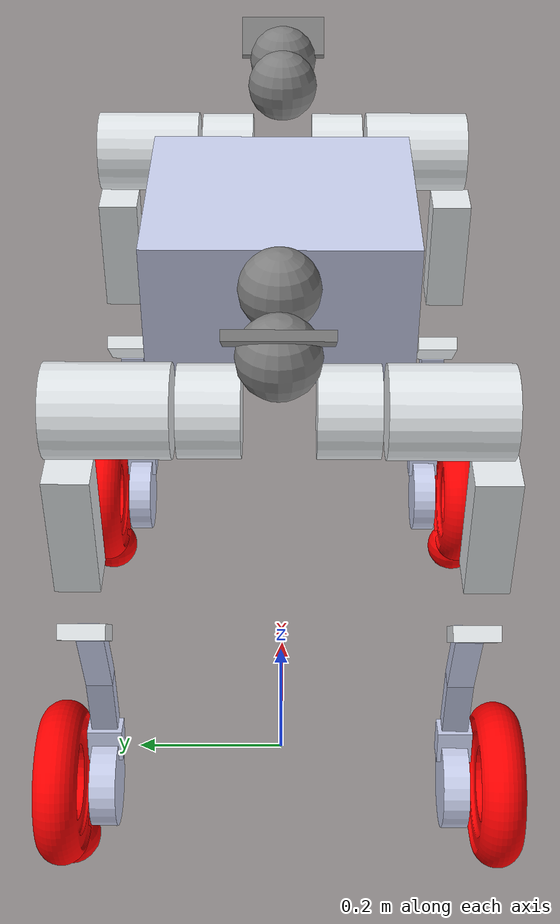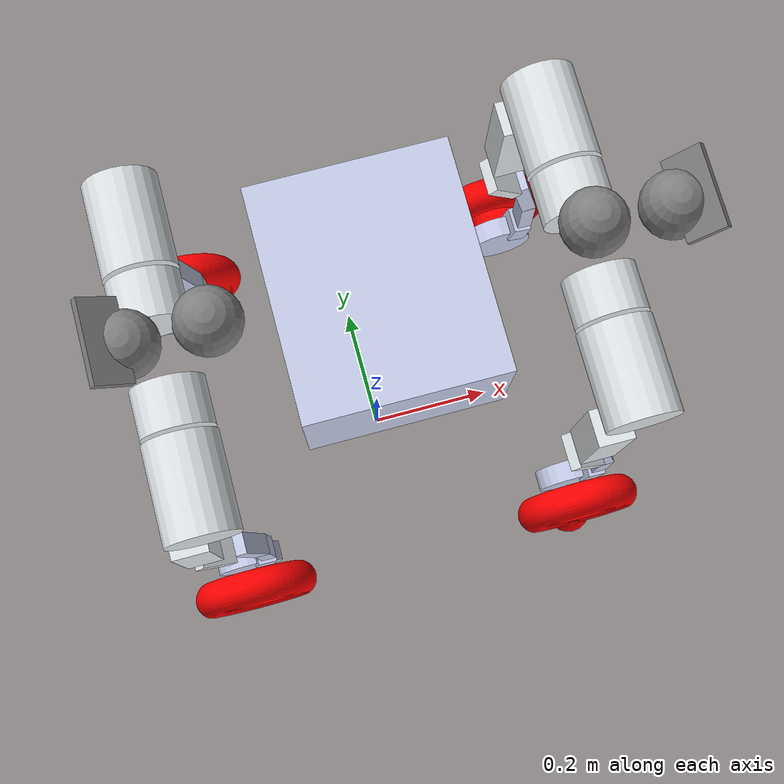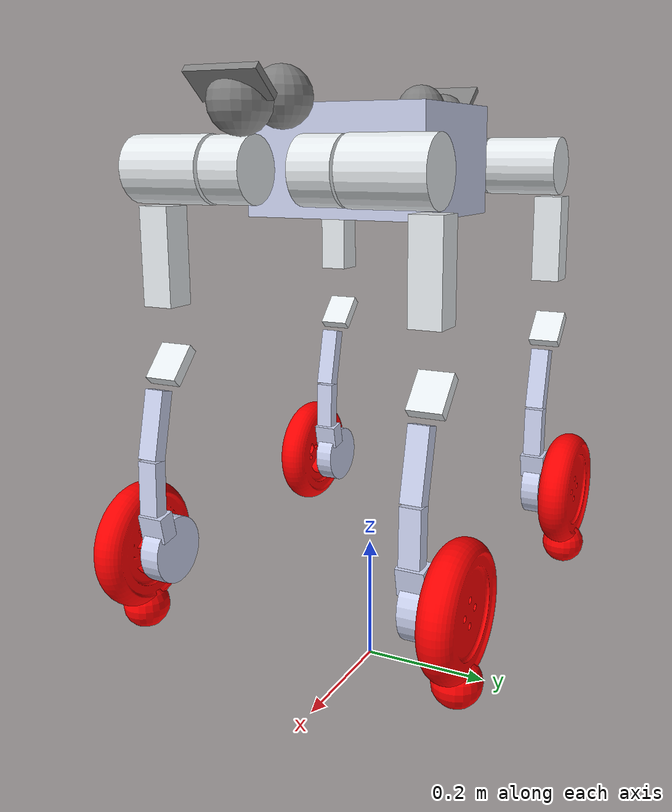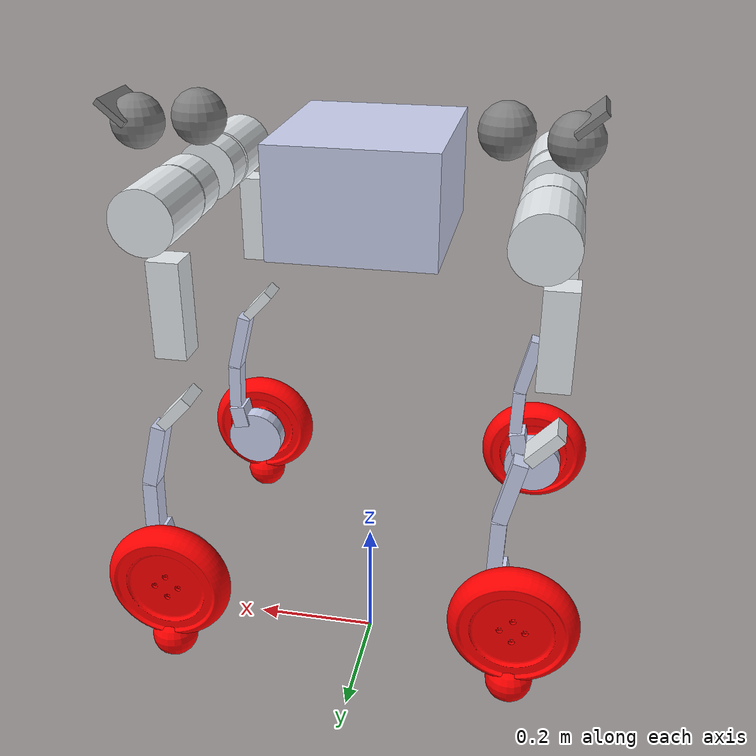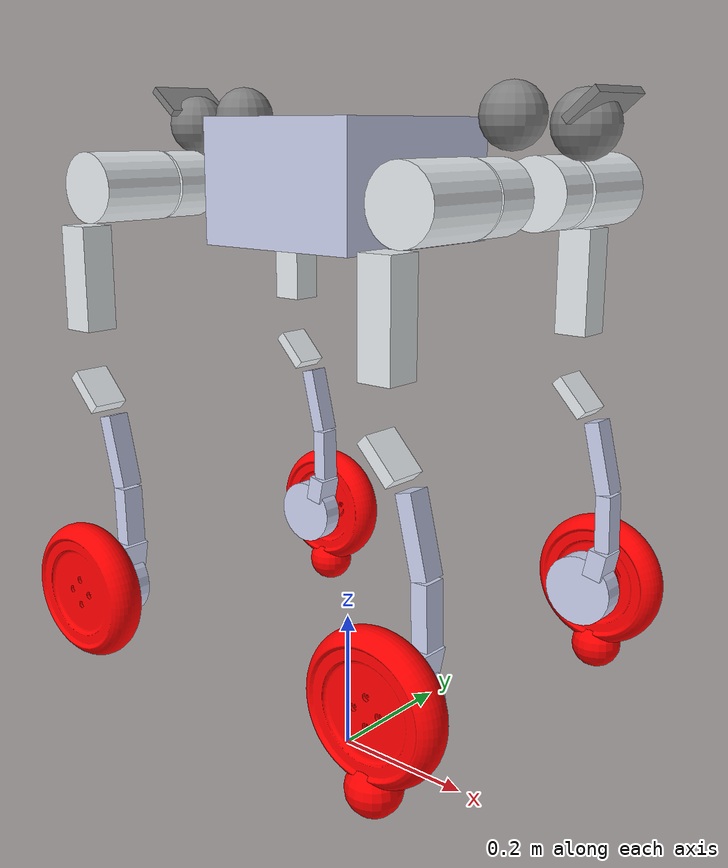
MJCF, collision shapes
<mujoco model="X2-0807urdf">
  <compiler angle="radian" meshdir="meshes/"/>

  <asset>
    <mesh name="base_link" file="base_link.STL"/>
    <mesh name="left_front_Link1" file="left_front_Link1.STL"/>
    <mesh name="left_front_Link2" file="left_front_Link2.STL"/>
    <mesh name="left_front_Link3" file="left_front_Link3.STL"/>
    <mesh name="left_front_Link4" file="left_front_Link4.STL"/>
    <mesh name="left_hind_Link1" file="left_hind_Link1.STL"/>
    <mesh name="left_hind_Link2" file="left_hind_Link2.STL"/>
    <mesh name="left_hind_Link3" file="left_hind_Link3.STL"/>
    <mesh name="left_hind_Link4" file="left_hind_Link4.STL"/>
    <mesh name="right_front_Link1" file="right_front_Link1.STL"/>
    <mesh name="right_front_Link2" file="right_front_Link2.STL"/>
    <mesh name="right_front_Link3" file="right_front_Link3.STL"/>
    <mesh name="right_front_Link4" file="right_front_Link4.STL"/>
    <mesh name="right_hind_Link1" file="right_hind_Link1.STL"/>
    <mesh name="right_hind_Link2" file="right_hind_Link2.STL"/>
    <mesh name="right_hind_Link3" file="right_hind_Link3.STL"/>
    <mesh name="right_hind_Link4" file="right_hind_Link4.STL"/>
  </asset>

  <worldbody>
    <body name="base_link" pos="0 0 0.8">
      <inertial pos="0.00697549 -0.000712133 0.0128764" quat="-0.00152806 0.699581 -0.00252911 0.714547" mass="19.671" diaginertia="0.474399 0.409727 0.14363"/>
      <joint name="floating_base_joint" type="free"/>
      <geom type="mesh" contype="0" conaffinity="0" group="1" density="0" rgba="0.792157 0.819608 0.933333 1" mesh="base_link"/>
      <geom size="0.12 0.14 0.08" pos="0 0 0.01" type="box" rgba="0.792157 0.819608 0.933333 1"/>
      <geom size="0.025 0.05 0.005" pos="0.365 0 0.1" quat="0.939373 0 -0.342898 0" type="box"/>
      <geom size="0.04" pos="0.345 0 0.08"/>
      <geom size="0.04" pos="0.25 0 0.09"/>
      <geom size="0.025 0.05 0.005" pos="-0.302 0 0.112" quat="0.939373 0 0.342898 0" type="box"/>
      <geom size="0.04" pos="-0.285 0 0.08"/>
      <geom size="0.04" pos="-0.19 0 0.09"/>
      <body name="hips_sphere" pos="-0.25944 0.0 0">
        <geom type="sphere" size="0.035" contype="0" conaffinity="0" group="1" density="0" rgba="0.6 0.6 0.6 0.0"/>
      </body>
      <body name="neck_sphere" pos="0.25944 0.0 0">
        <geom type="sphere" size="0.035" contype="0" conaffinity="0" group="1" density="0" rgba="0.6 0.6 0.6 0.0"/>
      </body>
      <body name="head_sphere" pos="0.3 0.0 0">
        <geom type="sphere" size="0.035" contype="0" conaffinity="0" group="1" density="0" rgba="0.6 0.6 0.6 0.0"/>
      </body>
      <body name="FL_hip" pos="0.25944 0.075113 0">
        <inertial pos="-0.002408 -0.01622 0.000239" quat="0.66751 0.421649 0.565191 0.239168" mass="1.62" diaginertia="0.0016644 0.00161602 0.00145995"/>
        <joint name="FL_hip_joint" pos="0 0 0" axis="1 0 0" range="-1.01 1.01" actuatorfrcrange="-120 120"/>
        <geom type="mesh" contype="0" conaffinity="0" group="1" density="0" rgba="0.898039 0.917647 0.929412 1" mesh="left_front_Link1"/>
        <geom size="0.046 0.06" pos="0 0.085 0" quat="0.707035 0.707179 0 0" type="cylinder" rgba="0.898039 0.917647 0.929412 1"/>
        <geom size="0.045 0.03" pos="0 -0.01 0" quat="0.707035 0.707179 0 0" type="cylinder" rgba="0.898039 0.917647 0.929412 1"/>
        <body name="FL_thigh" pos="0 0.12779 0">
          <inertial pos="-0.003268 -0.03111 -0.053896" quat="0.993045 0.11348 0.0231928 0.0211279" mass="3.079" diaginertia="0.0293395 0.0280448 0.00383794"/>
          <joint name="FL_thigh_joint" pos="0 0 0" axis="0 1 0" range="-2.34 3.15" actuatorfrcrange="-120 120"/>
          <geom type="mesh" contype="0" conaffinity="0" group="1" density="0" rgba="0.898039 0.917647 0.929412 1" mesh="left_front_Link2"/>
          <geom size="0.023 0.023 0.07" pos="-0.025 -0.003 -0.12" type="box" rgba="0.898039 0.917647 0.929412 1"/>
          <geom size="0.0085 0.025 0.03" pos="-0.022 0 -0.275" quat="0.930508 0 -0.366273 0" type="box" rgba="0.898039 0.917647 0.929412 1"/>
          <body name="FL_calf" pos="0 0 -0.275">
            <inertial pos="0.004018 0.017411 -0.232283" quat="0.775901 0.051812 -0.0143577 0.628559" mass="1.751" diaginertia="0.0147479 0.0144066 0.00134515"/>
            <joint name="FL_calf_joint" pos="0 0 0" axis="0 1 0" range="-2.77 -0.54" actuatorfrcrange="-180 180"/>
            <geom type="mesh" contype="0" conaffinity="0" group="1" density="0" rgba="0.792157 0.819608 0.933333 1" mesh="left_front_Link3"/>
            <geom size="0.05 0.015" pos="0 0 -0.275" quat="0.707035 0.707179 0 0" type="cylinder" rgba="0.792157 0.819608 0.933333 1"/>
            <geom size="0.011 0.015 0.05" pos="0.02 0 -0.08" quat="0.992809 0 -0.119712 0" type="box" rgba="0.792157 0.819608 0.933333 1"/>
            <geom size="0.011 0.015 0.04" pos="0.033 0 -0.17" quat="0.999888 0 -0.0149994 0" type="box" rgba="0.792157 0.819608 0.933333 1"/>
            <geom size="0.014 0.02 0.02" pos="0.027 0 -0.23" quat="0.995004 0 0.0998334 0" type="box" rgba="0.792157 0.819608 0.933333 1"/>
            <body name="FL_wheel" pos="0 0 -0.275">
              <inertial pos="0 0.05108 0" quat="0.707107 0 0 0.707107" mass="0.982" diaginertia="0.00458159 0.00243576 0.00243576"/>
              <joint name="FL_wheel_joint" pos="0 0 0" axis="0 1 0" range="-inf inf" actuatorfrcrange="-24.5 24.5"/>
              <geom type="mesh" contype="0" conaffinity="0" group="1" density="0" rgba="0.792157 0.819608 0.933333 1" mesh="left_front_Link4"/>
              <geom size="0.035" pos="0.0 0.05 -0.1" contype="0" conaffinity="0" group="1" density="0" rgba="1 0 0 1"/>
              <geom type="mesh" rgba="1 0 0 1" mesh="left_front_Link4"/>
              <body name="left_hand" pos="0.0 0.05 -0.1">
                <geom type="sphere" size="0.035" contype="0" conaffinity="0" group="1" density="0" rgba="0.6 0.6 0.6 0.0"/>
              </body>
            </body>
          </body>
        </body>
      </body>
      <body name="RL_hip" pos="-0.25944 0.075113 0">
        <inertial pos="0.00327 -0.01622 -9.7e-05" quat="0.358494 0.383537 0.580824 0.622113" mass="1.62" diaginertia="0.00167848 0.00163116 0.00141504"/>
        <joint name="RL_hip_joint" pos="0 0 0" axis="1 0 0" range="-1.01 1.01" actuatorfrcrange="-120 120"/>
        <geom type="mesh" contype="0" conaffinity="0" group="1" density="0" rgba="0.898039 0.917647 0.929412 1" mesh="left_hind_Link1"/>
        <geom size="0.046 0.06" pos="0 0.085 0" quat="0.707035 0.707179 0 0" type="cylinder" rgba="0.898039 0.917647 0.929412 1"/>
        <geom size="0.045 0.03" pos="0 -0.01 0" quat="0.707035 0.707179 0 0" type="cylinder" rgba="0.898039 0.917647 0.929412 1"/>
        <body name="RL_thigh" pos="0 0.12779 0">
          <inertial pos="-0.003268 -0.03111 -0.053896" quat="0.993045 0.11348 0.0231928 0.0211279" mass="3.079" diaginertia="0.0293395 0.0280448 0.00383794"/>
          <joint name="RL_thigh_joint" pos="0 0 0" axis="0 1 0" range="-1.56 3.94" actuatorfrcrange="-120 120"/>
          <geom type="mesh" contype="0" conaffinity="0" group="1" density="0" rgba="0.898039 0.917647 0.929412 1" mesh="left_hind_Link2"/>
          <geom size="0.023 0.023 0.07" pos="-0.025 -0.003 -0.12" type="box" rgba="0.898039 0.917647 0.929412 1"/>
          <geom size="0.0085 0.025 0.03" pos="-0.022 0 -0.275" quat="0.930508 0 -0.366273 0" type="box" rgba="0.898039 0.917647 0.929412 1"/>
          <body name="RL_calf" pos="0 0 -0.275">
            <inertial pos="0.004018 0.017411 -0.232283" quat="0.775901 0.051812 -0.0143577 0.628559" mass="1.751" diaginertia="0.0147479 0.0144066 0.00134515"/>
            <joint name="RL_calf_joint" pos="0 0 0" axis="0 1 0" range="-2.77 -0.54" actuatorfrcrange="-180 180"/>
            <geom type="mesh" contype="0" conaffinity="0" group="1" density="0" rgba="0.792157 0.819608 0.933333 1" mesh="left_hind_Link3"/>
            <geom size="0.05 0.015" pos="0 0 -0.275" quat="0.707035 0.707179 0 0" type="cylinder" rgba="0.792157 0.819608 0.933333 1"/>
            <geom size="0.011 0.015 0.05" pos="0.02 0 -0.08" quat="0.992809 0 -0.119712 0" type="box" rgba="0.792157 0.819608 0.933333 1"/>
            <geom size="0.011 0.015 0.04" pos="0.033 0 -0.17" quat="0.999888 0 -0.0149994 0" type="box" rgba="0.792157 0.819608 0.933333 1"/>
            <geom size="0.014 0.02 0.02" pos="0.027 0 -0.23" quat="0.995004 0 0.0998334 0" type="box" rgba="0.792157 0.819608 0.933333 1"/>
            <body name="RL_wheel" pos="0 0 -0.275">
              <inertial pos="0 0.05108 0" quat="0.707107 0 0 0.707107" mass="0.982" diaginertia="0.00458159 0.00243576 0.00243576"/>
              <joint name="RL_wheel_joint" pos="0 0 0" axis="0 1 0" range="-inf inf" actuatorfrcrange="-24.5 24.5"/>
              <geom type="mesh" contype="0" conaffinity="0" group="1" density="0" rgba="0.792157 0.819608 0.933333 1" mesh="left_hind_Link4"/>
              <geom size="0.035" pos="0.0 0.05 -0.1" contype="0" conaffinity="0" group="1" density="0" rgba="1 0 0 1"/>
              <geom type="mesh" rgba="1 0 0 1" mesh="left_hind_Link4"/>
              <body name="left_foot" pos="0.0 0.05 -0.1">
                <geom type="sphere" size="0.035" contype="0" conaffinity="0" group="1" density="0" rgba="0.6 0.6 0.6 1"/>
                <body name="left_foot_end_link" pos="0.0 0 0.0">
                  <geom type="sphere" size="0.01" contype="0" conaffinity="0" group="1" density="0" rgba="1 0 0 0"/>
                </body>
                <body name="left_toe_link" pos="0.0 0 0.0">
                  <geom type="sphere" size="0.01" contype="0" conaffinity="0" group="1" density="0" rgba="1 0 0 0"/>
                </body>
              </body>
            </body>
          </body>
        </body>
      </body>
      <body name="FR_hip" pos="0.25944 -0.075113 0">
        <inertial pos="-0.002465 0.01622 0.000318" quat="0.244263 0.553086 0.449878 0.657299" mass="1.62" diaginertia="0.0016672 0.00160755 0.00146457"/>
        <joint name="FR_hip_joint" pos="0 0 0" axis="1 0 0" range="-1.01 1.01" actuatorfrcrange="-120 120"/>
        <geom type="mesh" contype="0" conaffinity="0" group="1" density="0" rgba="0.898039 0.917647 0.929412 1" mesh="right_front_Link1"/>
        <geom size="0.046 0.06" pos="0 -0.085 0" quat="0.707035 0.707179 0 0" type="cylinder" rgba="0.898039 0.917647 0.929412 1"/>
        <geom size="0.045 0.03" pos="0 0.01 0" quat="0.707035 0.707179 0 0" type="cylinder" rgba="0.898039 0.917647 0.929412 1"/>
        <body name="FR_thigh" pos="0 -0.12779 0">
          <inertial pos="-0.003256 0.031125 -0.053921" quat="0.993054 -0.113587 0.0234158 -0.0198545" mass="3.077" diaginertia="0.029323 0.028038 0.00383842"/>
          <joint name="FR_thigh_joint" pos="0 0 0" axis="0 1 0" range="-2.34 3.15" actuatorfrcrange="-120 120"/>
          <geom type="mesh" contype="0" conaffinity="0" group="1" density="0" rgba="0.898039 0.917647 0.929412 1" mesh="right_front_Link2"/>
          <geom size="0.023 0.023 0.07" pos="-0.025 -0.003 -0.12" type="box" rgba="0.898039 0.917647 0.929412 1"/>
          <geom size="0.0085 0.025 0.03" pos="-0.022 0 -0.275" quat="0.930508 0 -0.366273 0" type="box" rgba="0.898039 0.917647 0.929412 1"/>
          <body name="FR_calf" pos="0 0 -0.275">
            <inertial pos="0.003855 -0.017411 -0.232224" quat="0.637245 -0.0146461 0.0520319 0.768763" mass="1.75" diaginertia="0.0147385 0.0144011 0.0013464"/>
            <joint name="FR_calf_joint" pos="0 0 0" axis="0 1 0" range="-2.77 -0.54" actuatorfrcrange="-180 180"/>
            <geom type="mesh" contype="0" conaffinity="0" group="1" density="0" rgba="0.792157 0.819608 0.933333 1" mesh="right_front_Link3"/>
            <geom size="0.05 0.015" pos="0 0 -0.275" quat="0.707035 0.707179 0 0" type="cylinder" rgba="0.792157 0.819608 0.933333 1"/>
            <geom size="0.011 0.015 0.05" pos="0.02 0 -0.08" quat="0.992809 0 -0.119712 0" type="box" rgba="0.792157 0.819608 0.933333 1"/>
            <geom size="0.011 0.015 0.04" pos="0.033 0 -0.17" quat="0.999888 0 -0.0149994 0" type="box" rgba="0.792157 0.819608 0.933333 1"/>
            <geom size="0.014 0.02 0.02" pos="0.027 0 -0.23" quat="0.995004 0 0.0998334 0" type="box" rgba="0.792157 0.819608 0.933333 1"/>
            <body name="FR_wheel" pos="0 0 -0.275">
              <inertial pos="0 -0.05108 0" quat="0.707107 0 0 0.707107" mass="0.982" diaginertia="0.00458159 0.00243576 0.00243576"/>
              <joint name="FR_wheel_joint" pos="0 0 0" axis="0 1 0" range="-inf inf" actuatorfrcrange="-24.5 24.5"/>
              <geom type="mesh" contype="0" conaffinity="0" group="1" density="0" rgba="0.792157 0.819608 0.933333 1" mesh="right_front_Link4"/>
              <geom size="0.035" pos="0.0 -0.05 -0.1" contype="0" conaffinity="0" group="1" density="0" rgba="1 0 0 1"/>
              <geom type="mesh" rgba="1 0 0 1" mesh="right_front_Link4"/>
              <body name="right_hand" pos="0.0 -0.05 -0.1">
                <geom type="sphere" size="0.035" contype="0" conaffinity="0" group="1" density="0" rgba="0.6 0.6 0.6 0.0"/>
              </body>
            </body>
          </body>
        </body>
      </body>
      <body name="RR_hip" pos="-0.25944 -0.075113 0">
        <inertial pos="0.00327 0.01622 -3.7e-05" quat="0.616206 0.585144 0.36648 0.378931" mass="1.62" diaginertia="0.00167769 0.00163476 0.00141225"/>
        <joint name="RR_hip_joint" pos="0 0 0" axis="1 0 0" range="-1.01 1.01" actuatorfrcrange="-120 120"/>
        <geom type="mesh" contype="0" conaffinity="0" group="1" density="0" rgba="0.898039 0.917647 0.929412 1" mesh="right_hind_Link1"/>
        <geom size="0.046 0.06" pos="0 -0.085 0" quat="0.707035 0.707179 0 0" type="cylinder" rgba="0.898039 0.917647 0.929412 1"/>
        <geom size="0.045 0.03" pos="0 0.01 0" quat="0.707035 0.707179 0 0" type="cylinder" rgba="0.898039 0.917647 0.929412 1"/>
        <body name="RR_thigh" pos="0 -0.12779 0">
          <inertial pos="-0.003256 0.031125 -0.053921" quat="0.993054 -0.113587 0.0234158 -0.0198545" mass="3.077" diaginertia="0.029323 0.028038 0.00383842"/>
          <joint name="RR_thigh_joint" pos="0 0 0" axis="0 1 0" range="-1.56 3.94" actuatorfrcrange="-120 120"/>
          <geom type="mesh" contype="0" conaffinity="0" group="1" density="0" rgba="0.898039 0.917647 0.929412 1" mesh="right_hind_Link2"/>
          <geom size="0.023 0.023 0.07" pos="-0.025 -0.003 -0.12" type="box" rgba="0.898039 0.917647 0.929412 1"/>
          <geom size="0.0085 0.025 0.03" pos="-0.022 0 -0.275" quat="0.930508 0 -0.366273 0" type="box" rgba="0.898039 0.917647 0.929412 1"/>
          <body name="RR_calf" pos="0 0 -0.275">
            <inertial pos="0.003855 -0.017411 -0.232224" quat="0.637245 -0.0146461 0.0520319 0.768763" mass="1.75" diaginertia="0.0147385 0.0144011 0.0013464"/>
            <joint name="RR_calf_joint" pos="0 0 0" axis="0 1 0" range="-2.77 -0.54" actuatorfrcrange="-180 180"/>
            <geom type="mesh" contype="0" conaffinity="0" group="1" density="0" rgba="0.792157 0.819608 0.933333 1" mesh="right_hind_Link3"/>
            <geom size="0.05 0.015" pos="0 0 -0.275" quat="0.707035 0.707179 0 0" type="cylinder" rgba="0.792157 0.819608 0.933333 1"/>
            <geom size="0.011 0.015 0.05" pos="0.02 0 -0.08" quat="0.992809 0 -0.119712 0" type="box" rgba="0.792157 0.819608 0.933333 1"/>
            <geom size="0.011 0.015 0.04" pos="0.033 0 -0.17" quat="0.999888 0 -0.0149994 0" type="box" rgba="0.792157 0.819608 0.933333 1"/>
            <geom size="0.014 0.02 0.02" pos="0.027 0 -0.23" quat="0.995004 0 0.0998334 0" type="box" rgba="0.792157 0.819608 0.933333 1"/>
            <body name="RR_wheel" pos="0 0 -0.275">
              <inertial pos="0 -0.05108 0" quat="0.707107 0 0 0.707107" mass="0.982" diaginertia="0.00458159 0.00243576 0.00243576"/>
              <joint name="RR_wheel_joint" pos="0 0 0" axis="0 1 0" range="-inf inf" actuatorfrcrange="-24.5 24.5"/>
              <geom type="mesh" contype="0" conaffinity="0" group="1" density="0" rgba="0.792157 0.819608 0.933333 1" mesh="right_hind_Link4"/>
              <geom size="0.035" pos="0.0 -0.05 -0.1" contype="0" conaffinity="0" group="1" density="0" rgba="1 0 0 0.0"/>
              <geom type="mesh" rgba="1 0 0 1" mesh="right_hind_Link4"/>
              <body name="right_foot" pos="0.0 -0.05 -0.1">
                <geom type="sphere" size="0.035" contype="0" conaffinity="0" group="1" density="0" rgba="0.6 0.6 0.6 0.0"/>
                <body name="right_foot_end_link" pos="0.0 0 0.0">
                  <geom type="sphere" size="0.01" contype="0" conaffinity="0" group="1" density="0" rgba="1 0 0 0"/>
                </body>
                <body name="right_toe_link" pos="0.0 0 0.0">
                  <geom type="sphere" size="0.01" contype="0" conaffinity="0" group="1" density="0" rgba="1 0 0 0"/>
                </body>
              </body>
            </body>
          </body>
        </body>
      </body>
    </body>
  </worldbody>

  <actuator>
    <motor ctrlrange="-120 120"  name="FR_hip_joint" joint="FR_hip_joint"/>
    <motor ctrlrange="-120 120"  name="FR_thigh_joint" joint="FR_thigh_joint"/>
    <motor ctrlrange="-180 180"  name="FR_calf_joint" joint="FR_calf_joint"/>
    <motor ctrlrange="-120 120"  name="FL_hip_joint" joint="FL_hip_joint"/>
    <motor ctrlrange="-120 120"  name="FL_thigh_joint" joint="FL_thigh_joint"/>
    <motor ctrlrange="-180 180" name="FL_calf_joint" joint="FL_calf_joint"/>
    <motor ctrlrange="-120 120"  name="RR_hip_joint" joint="RR_hip_joint"/>
    <motor ctrlrange="-120 120"  name="RR_thigh_joint" joint="RR_thigh_joint"/>
    <motor ctrlrange="-180 180" name="RR_calf_joint" joint="RR_calf_joint"/>
    <motor ctrlrange="-120 120"  name="RL_hip_joint" joint="RL_hip_joint"/>
    <motor ctrlrange="-120 120"  name="RL_thigh_joint" joint="RL_thigh_joint"/>
    <motor ctrlrange="-180 180" name="RL_calf_joint" joint="RL_calf_joint"/>
  </actuator>

  <sensor>
    <jointpos name="FR_hip_pos" joint="FR_hip_joint" />
    <jointpos name="FR_thigh_pos" joint="FR_thigh_joint" />
    <jointpos name="FR_calf_pos" joint="FR_calf_joint" />
    <jointpos name="FL_hip_pos" joint="FL_hip_joint" />
    <jointpos name="FL_thigh_pos" joint="FL_thigh_joint" />
    <jointpos name="FL_calf_pos" joint="FL_calf_joint" />
    <jointpos name="RR_hip_pos" joint="RR_hip_joint" />
    <jointpos name="RR_thigh_pos" joint="RR_thigh_joint" />
    <jointpos name="RR_calf_pos" joint="RR_calf_joint" />
    <jointpos name="RL_hip_pos" joint="RL_hip_joint" />
    <jointpos name="RL_thigh_pos" joint="RL_thigh_joint" />
    <jointpos name="RL_calf_pos" joint="RL_calf_joint" />

    <jointvel name="FR_hip_vel" joint="FR_hip_joint" />
    <jointvel name="FR_thigh_vel" joint="FR_thigh_joint" />
    <jointvel name="FR_calf_vel" joint="FR_calf_joint" />
    <jointvel name="FL_hip_vel" joint="FL_hip_joint" />
    <jointvel name="FL_thigh_vel" joint="FL_thigh_joint" />
    <jointvel name="FL_calf_vel" joint="FL_calf_joint" />
    <jointvel name="RR_hip_vel" joint="RR_hip_joint" />
    <jointvel name="RR_thigh_vel" joint="RR_thigh_joint" />
    <jointvel name="RR_calf_vel" joint="RR_calf_joint" />
    <jointvel name="RL_hip_vel" joint="RL_hip_joint" />
    <jointvel name="RL_thigh_vel" joint="RL_thigh_joint" />
    <jointvel name="RL_calf_vel" joint="RL_calf_joint" />
    <jointvel name="FR_wheel_vel" joint="FR_wheel_joint" />
    <jointvel name="FL_wheel_vel" joint="FL_wheel_joint" />
    <jointvel name="RR_wheel_vel" joint="RR_wheel_joint" />
    <jointvel name="RL_wheel_vel" joint="RL_wheel_joint" />

    <jointactuatorfrc name="FR_hip_torque" joint="FR_hip_joint" noise="0.01" />
    <jointactuatorfrc name="FR_thigh_torque" joint="FR_thigh_joint" noise="0.01" />
    <jointactuatorfrc name="FR_calf_torque" joint="FR_calf_joint" noise="0.01" />
    <jointactuatorfrc name="FL_hip_torque" joint="FL_hip_joint" noise="0.01" />
    <jointactuatorfrc name="FL_thigh_torque" joint="FL_thigh_joint" noise="0.01" />
    <jointactuatorfrc name="FL_calf_torque" joint="FL_calf_joint" noise="0.01" />
    <jointactuatorfrc name="RR_hip_torque" joint="RR_hip_joint" noise="0.01" />
    <jointactuatorfrc name="RR_thigh_torque" joint="RR_thigh_joint" noise="0.01" />
    <jointactuatorfrc name="RR_calf_torque" joint="RR_calf_joint" noise="0.01" />
    <jointactuatorfrc name="RL_hip_torque" joint="RL_hip_joint" noise="0.01" />
    <jointactuatorfrc name="RL_thigh_torque" joint="RL_thigh_joint" noise="0.01" />
    <jointactuatorfrc name="RL_calf_torque" joint="RL_calf_joint" noise="0.01" />
    <jointactuatorfrc name="FR_wheel_torque" joint="FR_wheel_joint" noise="0.01" />
    <jointactuatorfrc name="FL_wheel_torque" joint="FL_wheel_joint" noise="0.01" />
    <jointactuatorfrc name="RR_wheel_torque" joint="RR_wheel_joint" noise="0.01" />
    <jointactuatorfrc name="RL_wheel_torque" joint="RL_wheel_joint" noise="0.01" />

  </sensor>

  <!-- setup scene -->

</mujoco>
